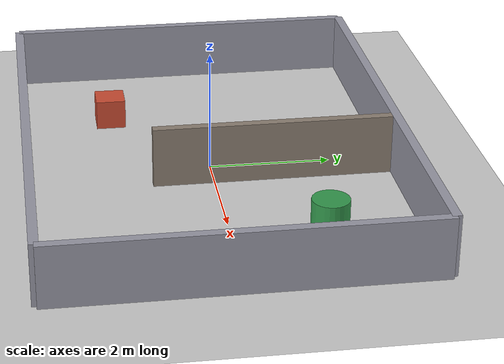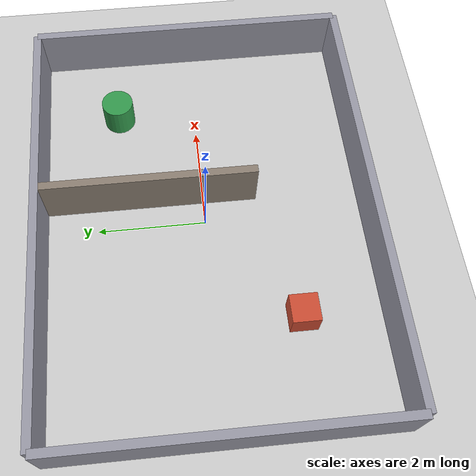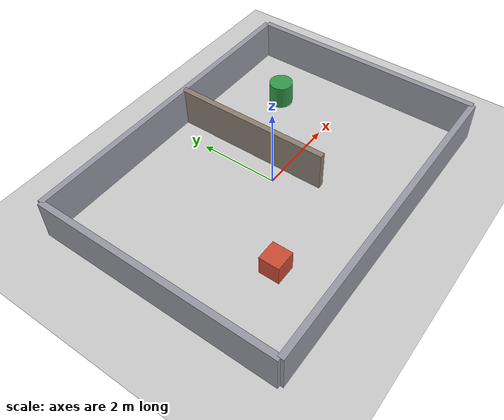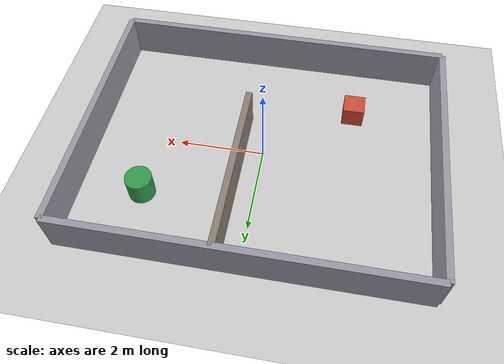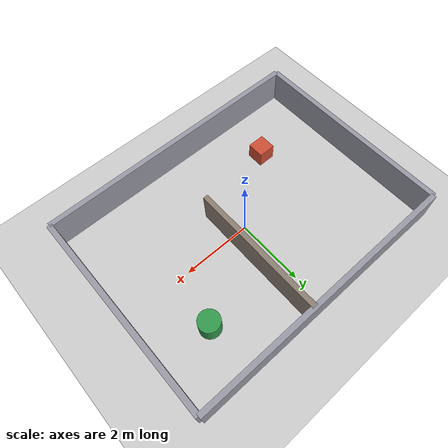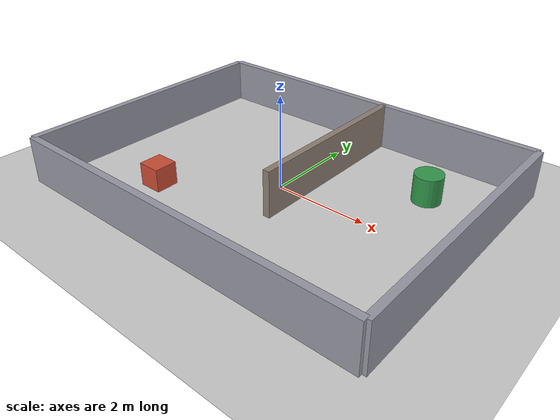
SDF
<?xml version="1.0" ?>
<sdf version="1.10">
  <world name="academy_world">

    <physics name="1ms" type="ignored">
      <max_step_size>0.001</max_step_size>
      <real_time_factor>1.0</real_time_factor>
    </physics>

    <plugin filename="gz-sim-physics-system"
            name="gz::sim::systems::Physics"/>
    <plugin filename="gz-sim-user-commands-system"
            name="gz::sim::systems::UserCommands"/>
    <plugin filename="gz-sim-scene-broadcaster-system"
            name="gz::sim::systems::SceneBroadcaster"/>
    <plugin filename="gz-sim-sensors-system"
            name="gz::sim::systems::Sensors">
      <render_engine>ogre2</render_engine>
    </plugin>
    <plugin filename="gz-sim-imu-system"
            name="gz::sim::systems::Imu"/>
    <plugin filename="gz-sim-contact-system"
            name="gz::sim::systems::Contact"/>

    <scene>
      <ambient>0.4 0.4 0.4 1</ambient>
      <background>0.7 0.7 0.8 1</background>
      <shadows>true</shadows>
    </scene>

    <light type="directional" name="sun">
      <cast_shadows>true</cast_shadows>
      <pose>0 0 10 0 0 0</pose>
      <diffuse>0.9 0.9 0.9 1</diffuse>
      <specular>0.2 0.2 0.2 1</specular>
      <direction>-0.5 0.3 -0.9</direction>
    </light>

    <!-- Ground -->
    <model name="ground_plane">
      <static>true</static>
      <link name="link">
        <collision name="collision">
          <geometry><plane><normal>0 0 1</normal><size>50 50</size></plane></geometry>
        </collision>
        <visual name="visual">
          <geometry><plane><normal>0 0 1</normal><size>50 50</size></plane></geometry>
          <material>
            <ambient>0.8 0.8 0.8 1</ambient>
            <diffuse>0.8 0.8 0.8 1</diffuse>
          </material>
        </visual>
      </link>
    </model>

    <model name="walls">
      <static>true</static>
      <link name="link">
        <!-- Outer walls: 8 x 6 room, walls 0.15 thick, 1.0 high -->
        <!-- North wall -->
        <collision name="c_n"><pose>0 3 0.5 0 0 0</pose>
          <geometry><box><size>8 0.15 1.0</size></box></geometry></collision>
        <visual name="v_n"><pose>0 3 0.5 0 0 0</pose>
          <geometry><box><size>8 0.15 1.0</size></box></geometry>
          <material><ambient>0.6 0.6 0.65 1</ambient><diffuse>0.6 0.6 0.65 1</diffuse></material></visual>
        <!-- South wall -->
        <collision name="c_s"><pose>0 -3 0.5 0 0 0</pose>
          <geometry><box><size>8 0.15 1.0</size></box></geometry></collision>
        <visual name="v_s"><pose>0 -3 0.5 0 0 0</pose>
          <geometry><box><size>8 0.15 1.0</size></box></geometry>
          <material><ambient>0.6 0.6 0.65 1</ambient><diffuse>0.6 0.6 0.65 1</diffuse></material></visual>
        <!-- East wall -->
        <collision name="c_e"><pose>4 0 0.5 0 0 0</pose>
          <geometry><box><size>0.15 6 1.0</size></box></geometry></collision>
        <visual name="v_e"><pose>4 0 0.5 0 0 0</pose>
          <geometry><box><size>0.15 6 1.0</size></box></geometry>
          <material><ambient>0.6 0.6 0.65 1</ambient><diffuse>0.6 0.6 0.65 1</diffuse></material></visual>
        <!-- West wall -->
        <collision name="c_w"><pose>-4 0 0.5 0 0 0</pose>
          <geometry><box><size>0.15 6 1.0</size></box></geometry></collision>
        <visual name="v_w"><pose>-4 0 0.5 0 0 0</pose>
          <geometry><box><size>0.15 6 1.0</size></box></geometry>
          <material><ambient>0.6 0.6 0.65 1</ambient><diffuse>0.6 0.6 0.65 1</diffuse></material></visual>
        <!-- Interior divider (partial wall) creating a corridor -->
        <collision name="c_div"><pose>0.5 1.0 0.5 0 0 0</pose>
          <geometry><box><size>0.15 4 1.0</size></box></geometry></collision>
        <visual name="v_div"><pose>0.5 1.0 0.5 0 0 0</pose>
          <geometry><box><size>0.15 4 1.0</size></box></geometry>
          <material><ambient>0.55 0.5 0.45 1</ambient><diffuse>0.55 0.5 0.45 1</diffuse></material></visual>
      </link>
    </model>

    <!-- A couple of box obstacles to make mapping & planning interesting -->
    <model name="obstacle_1">
      <static>true</static>
      <pose>-2.0 -1.5 0.25 0 0 0</pose>
      <link name="link">
        <collision name="c"><geometry><box><size>0.5 0.5 0.5</size></box></geometry></collision>
        <visual name="v"><geometry><box><size>0.5 0.5 0.5</size></box></geometry>
          <material><ambient>0.8 0.3 0.2 1</ambient><diffuse>0.8 0.3 0.2 1</diffuse></material></visual>
      </link>
    </model>
    <model name="obstacle_2">
      <static>true</static>
      <pose>2.5 1.5 0.3 0 0 0</pose>
      <link name="link">
        <collision name="c"><geometry><cylinder><radius>0.3</radius><length>0.6</length></cylinder></geometry></collision>
        <visual name="v"><geometry><cylinder><radius>0.3</radius><length>0.6</length></cylinder></geometry>
          <material><ambient>0.2 0.6 0.3 1</ambient><diffuse>0.2 0.6 0.3 1</diffuse></material></visual>
      </link>
    </model>

  </world>
</sdf>
